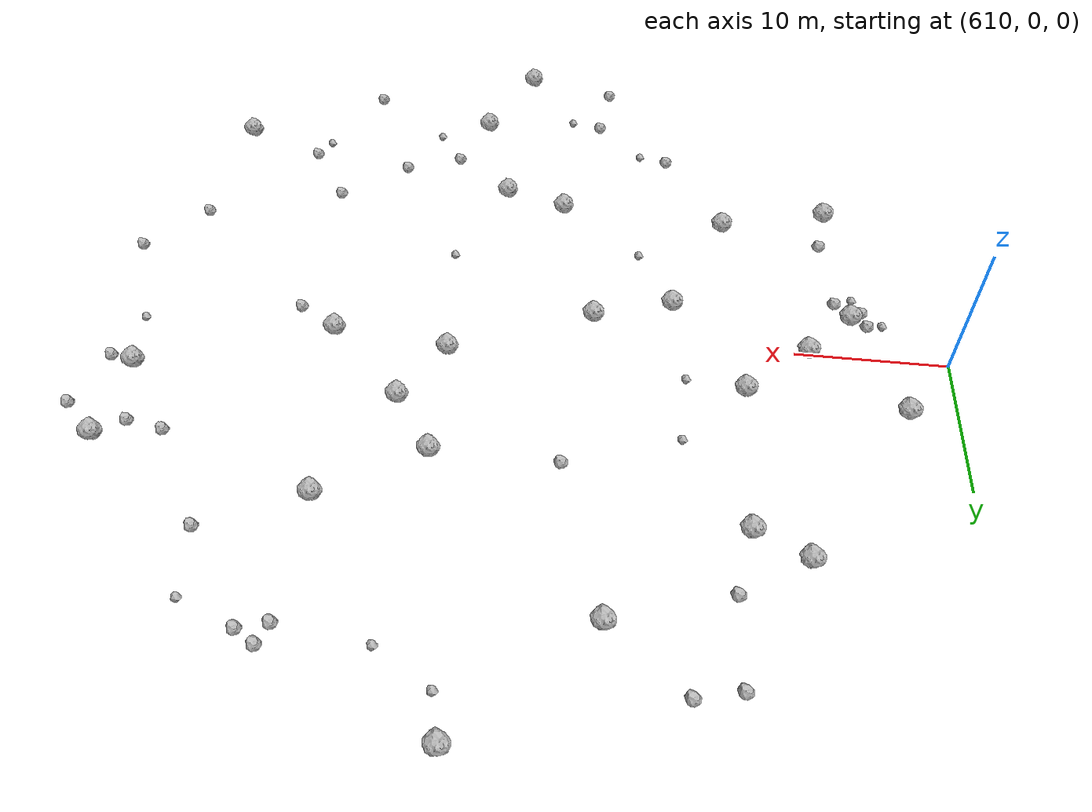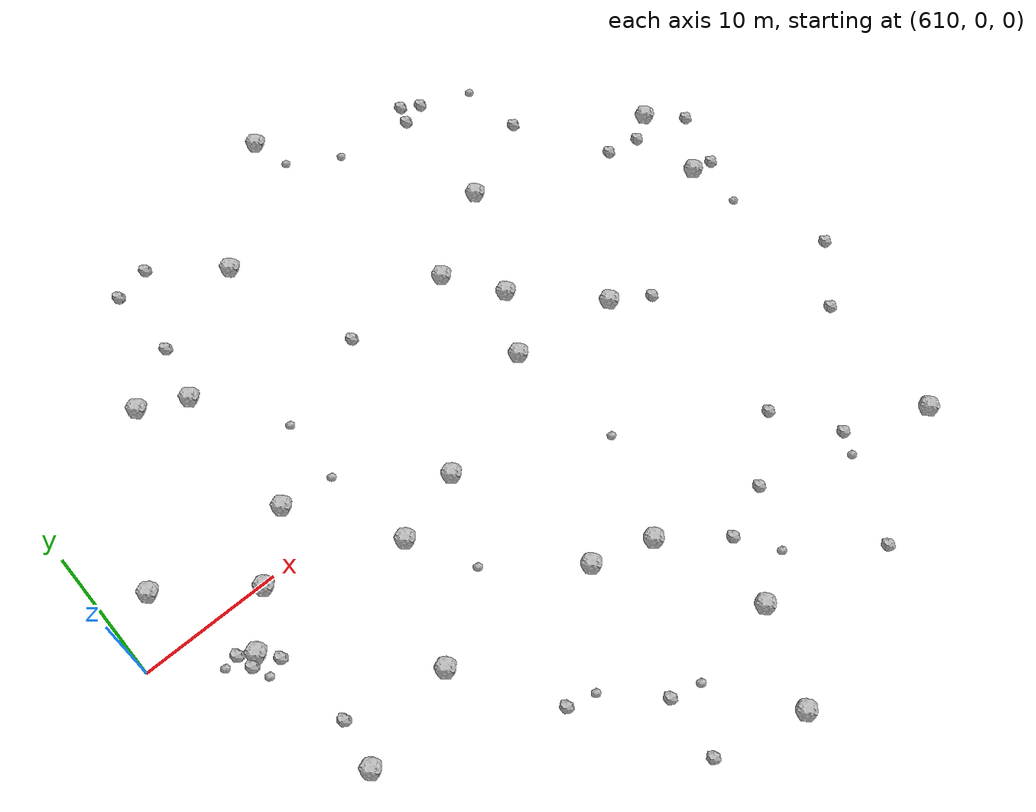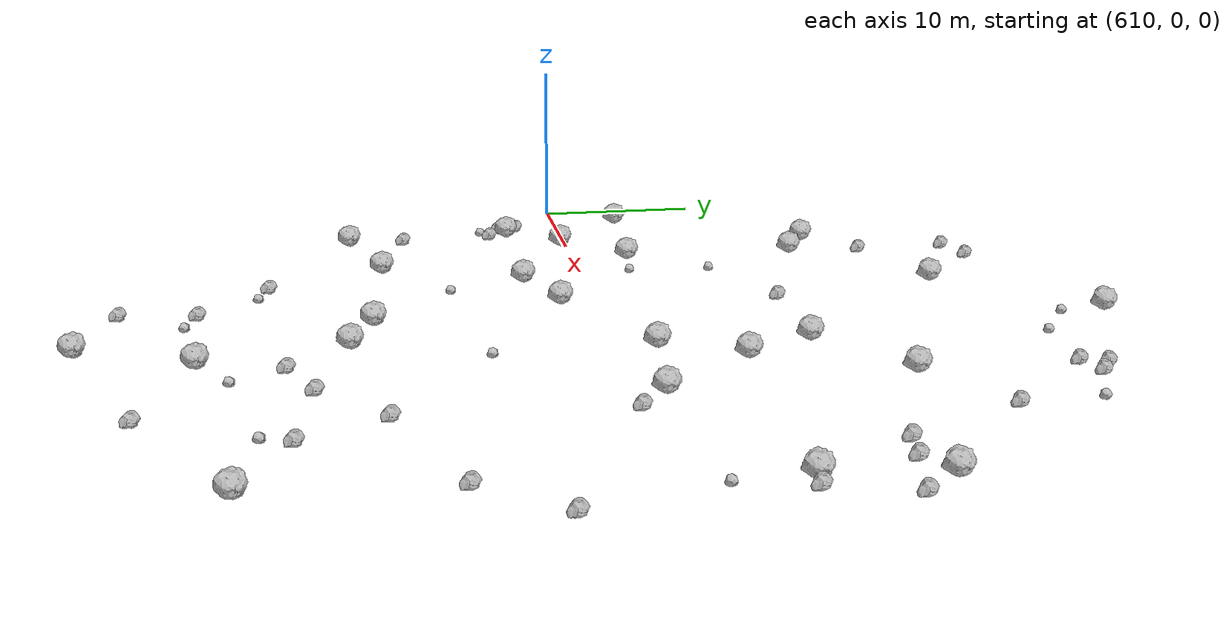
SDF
<sdf version="1.6">
 <world name="default">
  <include><uri>model://sun</uri></include>
  <model name="rock1_16_3">
   <include><uri>model://rock1</uri><pose>628.2000857577633 -3.6626493888841374 0.5 0 0 0</pose></include>
  </model>
  <model name="rock1_16_4">
   <include><uri>model://rock1</uri><pose>640.2387462067361 -28.874465866303645 0.5 0 0 0</pose></include>
  </model>
  <model name="rock1_16_5">
   <include><uri>model://rock1</uri><pose>616.1320890529084 -3.572525947293638 0.5 0 0 0</pose></include>
  </model>
  <model name="rock1_16_6">
   <include><uri>model://rock1</uri><pose>661.9974090572582 -19.584642800491928 0.5 0 0 0</pose></include>
  </model>
  <model name="rock1_16_7">
   <include><uri>model://rock1</uri><pose>642.9141593813733 10.541947759675608 0.5 0 0 0</pose></include>
  </model>
  <model name="rock1_16_8">
   <include><uri>model://rock1</uri><pose>624.7212344198061 -12.152649408190584 0.5 0 0 0</pose></include>
  </model>
  <model name="rock1_16_9">
   <include><uri>model://rock1</uri><pose>617.2281346851221 -14.055918021990957 0.5 0 0 0</pose></include>
  </model>
  <model name="rock1_16_10">
   <include><uri>model://rock1</uri><pose>633.5210225932406 -2.0268445741466294 0.5 0 0 0</pose></include>
  </model>
  <model name="rock1_16_11">
   <include><uri>model://rock1</uri><pose>643.2014982865701 -22.316514018862488 0.5 0 0 0</pose></include>
  </model>
  <model name="rock1_16_12">
   <include><uri>model://rock1</uri><pose>623.2604306741733 14.242197216877685 0.5 0 0 0</pose></include>
  </model>
  <model name="rock1_16_13">
   <include><uri>model://rock1</uri><pose>650.8556912195696 1.1186087244041616 0.5 0 0 0</pose></include>
  </model>
  <model name="rock1_16_14">
   <include><uri>model://rock1</uri><pose>631.5375628868863 21.046590448700996 0.5 0 0 0</pose></include>
  </model>
  <model name="rock1_16_15">
   <include><uri>model://rock1</uri><pose>636.4380614228015 -12.966556036596156 0.5 0 0 0</pose></include>
  </model>
  <model name="rock1_16_16">
   <include><uri>model://rock1</uri><pose>623.3394185320777 3.5272029607836544 0.5 0 0 0</pose></include>
  </model>
  <model name="rock1_16_17">
   <include><uri>model://rock1</uri><pose>640.7930783415812 -14.319376242409977 0.5 0 0 0</pose></include>
  </model>
  <model name="rock1_16_18">
   <include><uri>model://rock1</uri><pose>619.1319811858742 -0.2535342041623636 0.5 0 0 0</pose></include>
  </model>
  <model name="rock1_16_19">
   <include><uri>model://rock1</uri><pose>645.6142727464282 6.497695166492626 0.5 0 0 0</pose></include>
  </model>
  <model name="rock1_16_20">
   <include><uri>model://rock1</uri><pose>664.0785998234485 11.586603223397816 0.5 0 0 0</pose></include>
  </model>
  <model name="rock1_16_21">
   <include><uri>model://rock1</uri><pose>613.1217343578899 4.277549925595558 0.5 0 0 0</pose></include>
  </model>
  <model name="rock1_16_22">
   <include><uri>model://rock1</uri><pose>643.0037648371023 2.0469091229984286 0.5 0 0 0</pose></include>
  </model>
  <model name="rock1_16_23">
   <include><uri>model://rock1</uri><pose>663.434039975898 5.469573054513873 0.5 0 0 0</pose></include>
  </model>
  <model name="rock1_16_24">
   <include><uri>model://rock1</uri><pose>619.9618562160913 15.877893600986972 0.5 0 0 0</pose></include>
  </model>
  <model name="rock1_16_25">
   <include><uri>model://rock1</uri><pose>649.4172923209708 14.509719391435091 0.5 0 0 0</pose></include>
  </model>
  <model name="rock1_16_26">
   <include><uri>model://rock1</uri><pose>639.5065322906618 28.922714396566484 0.5 0 0 0</pose></include>
  </model>
  <model name="rock2_16_0">
   <include><uri>model://rock2</uri><pose>644.9023672368498 -17.625556518099323 0.3 0 0 0</pose></include>
  </model>
  <model name="rock2_16_1">
   <include><uri>model://rock2</uri><pose>615.385807542228 -4.0636191543940186 0.3 0 0 0</pose></include>
  </model>
  <model name="rock2_16_2">
   <include><uri>model://rock2</uri><pose>655.737623095419 17.58904291143699 0.3 0 0 0</pose></include>
  </model>
  <model name="rock2_16_3">
   <include><uri>model://rock2</uri><pose>628.939143171235 -18.955737169133833 0.3 0 0 0</pose></include>
  </model>
  <model name="rock2_16_4">
   <include><uri>model://rock2</uri><pose>652.3266444619736 -24.683419525207672 0.3 0 0 0</pose></include>
  </model>
  <model name="rock2_16_5">
   <include><uri>model://rock2</uri><pose>662.1300909204864 10.409263798982337 0.3 0 0 0</pose></include>
  </model>
  <model name="rock2_16_6">
   <include><uri>model://rock2</uri><pose>617.7740029587372 -10.545881772240136 0.3 0 0 0</pose></include>
  </model>
  <model name="rock2_16_7">
   <include><uri>model://rock2</uri><pose>615.0716574957454 -2.851371911108483 0.3 0 0 0</pose></include>
  </model>
  <model name="rock2_16_8">
   <include><uri>model://rock2</uri><pose>653.4797371408042 -0.5443385498274331 0.3 0 0 0</pose></include>
  </model>
  <model name="rock2_16_9">
   <include><uri>model://rock2</uri><pose>623.9163781244505 24.337016682913358 0.3 0 0 0</pose></include>
  </model>
  <model name="rock2_16_10">
   <include><uri>model://rock2</uri><pose>634.2860817896606 -22.771793812935023 0.3 0 0 0</pose></include>
  </model>
  <model name="rock2_16_11">
   <include><uri>model://rock2</uri><pose>648.8068370885545 -16.160600740349885 0.3 0 0 0</pose></include>
  </model>
  <model name="rock2_16_12">
   <include><uri>model://rock2</uri><pose>650.1312593852606 24.536738748427922 0.3 0 0 0</pose></include>
  </model>
  <model name="rock2_16_13">
   <include><uri>model://rock2</uri><pose>626.6553308712272 25.01910170440837 0.3 0 0 0</pose></include>
  </model>
  <model name="rock2_16_14">
   <include><uri>model://rock2</uri><pose>634.710163360656 10.700974305866062 0.3 0 0 0</pose></include>
  </model>
  <model name="rock2_16_15">
   <include><uri>model://rock2</uri><pose>633.7619647130105 -27.20156652219627 0.3 0 0 0</pose></include>
  </model>
  <model name="rock2_16_16">
   <include><uri>model://rock2</uri><pose>649.6002884264412 23.173982988849417 0.3 0 0 0</pose></include>
  </model>
  <model name="rock2_16_17">
   <include><uri>model://rock2</uri><pose>617.1151060384724 -4.772590641278654 0.3 0 0 0</pose></include>
  </model>
  <model name="rock2_16_18">
   <include><uri>model://rock2</uri><pose>651.4547107162259 23.726028638301074 0.3 0 0 0</pose></include>
  </model>
  <model name="rock2_16_19">
   <include><uri>model://rock2</uri><pose>662.6633536871145 -9.547984235175228 0.3 0 0 0</pose></include>
  </model>
  <model name="rock2_16_20">
   <include><uri>model://rock2</uri><pose>656.1146632867835 -17.050192633334973 0.3 0 0 0</pose></include>
  </model>
  <model name="rock2_16_21">
   <include><uri>model://rock2</uri><pose>666.3558563951167 9.42830536457297 0.3 0 0 0</pose></include>
  </model>
  <model name="rock2_16_22">
   <include><uri>model://rock2</uri><pose>653.290105713164 -12.596698272617406 0.3 0 0 0</pose></include>
  </model>
  <model name="rock2_16_23">
   <include><uri>model://rock2</uri><pose>666.396911990863 -5.4361703073902525 0.3 0 0 0</pose></include>
  </model>
  <model name="rock2_16_24">
   <include><uri>model://rock2</uri><pose>659.6691757334129 10.88538710457349 0.3 0 0 0</pose></include>
  </model>
  <model name="rock2_16_25">
   <include><uri>model://rock2</uri><pose>664.9800797763882 5.198521795954733 0.3 0 0 0</pose></include>
  </model>
  <model name="rock2_16_26">
   <include><uri>model://rock2</uri><pose>624.1552598587418 18.6480537251338 0.3 0 0 0</pose></include>
  </model>
  <model name="rock3_16_0">
   <include><uri>model://rock3</uri><pose>643.7239447674464 -6.928599211899929 0.2 0 0 0</pose></include>
  </model>
  <model name="rock3_16_1">
   <include><uri>model://rock3</uri><pose>655.1667207635965 22.177554153313096 0.2 0 0 0</pose></include>
  </model>
  <model name="rock3_16_2">
   <include><uri>model://rock3</uri><pose>627.1464102518453 3.083872922349123 0.2 0 0 0</pose></include>
  </model>
  <model name="rock3_16_3">
   <include><uri>model://rock3</uri><pose>640.1702400175968 26.01536746996193 0.2 0 0 0</pose></include>
  </model>
  <model name="rock3_16_4">
   <include><uri>model://rock3</uri><pose>643.7869698159694 23.821806016737966 0.2 0 0 0</pose></include>
  </model>
  <model name="rock3_16_5">
   <include><uri>model://rock3</uri><pose>630.6064600308479 -8.260718164919062 0.2 0 0 0</pose></include>
  </model>
  <model name="rock3_16_6">
   <include><uri>model://rock3</uri><pose>627.3268738741991 8.059877929529414 0.2 0 0 0</pose></include>
  </model>
  <model name="rock3_16_7">
   <include><uri>model://rock3</uri><pose>655.314073441416 -18.65406098199714 0.2 0 0 0</pose></include>
  </model>
  <model name="rock3_16_8">
   <include><uri>model://rock3</uri><pose>663.8241462544853 1.5128088344906843 0.2 0 0 0</pose></include>
  </model>
  <model name="rock3_16_9">
   <include><uri>model://rock3</uri><pose>646.6958756197091 -20.42629004573024 0.2 0 0 0</pose></include>
  </model>
  <model name="rock3_16_10">
   <include><uri>model://rock3</uri><pose>615.849497966636 -5.315064694475005 0.2 0 0 0</pose></include>
  </model>
  <model name="rock3_16_11">
   <include><uri>model://rock3</uri><pose>636.437295832682 -23.349962765434555 0.2 0 0 0</pose></include>
  </model>
  <model name="rock3_16_12">
   <include><uri>model://rock3</uri><pose>613.9955969325613 -3.075688313075158 0.2 0 0 0</pose></include>
  </model>
  <model name="rock3_16_13">
   <include><uri>model://rock3</uri><pose>630.9261910270054 -19.51485464754102 0.2 0 0 0</pose></include>
  </model>
 </world>
</sdf>
